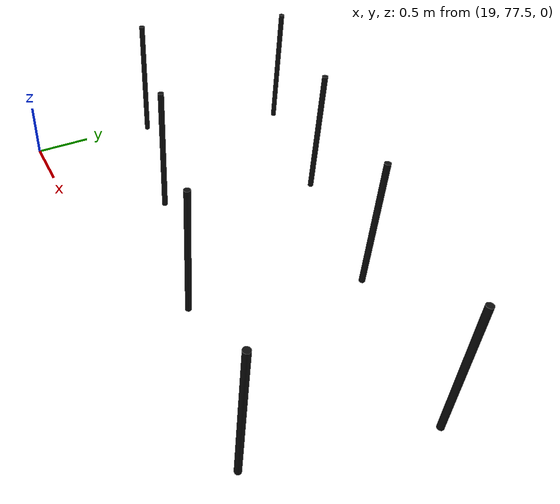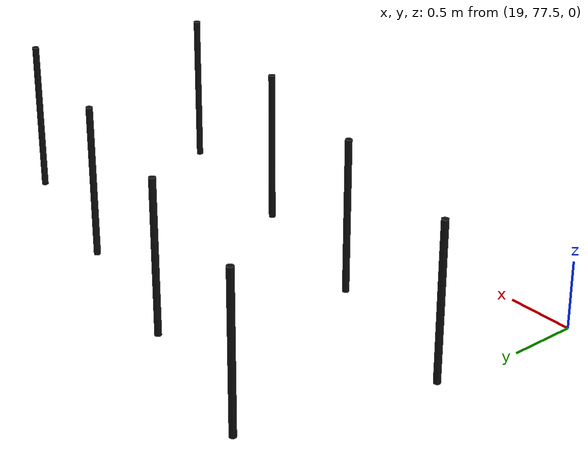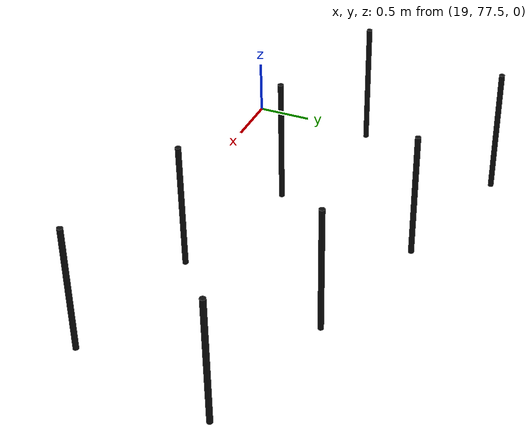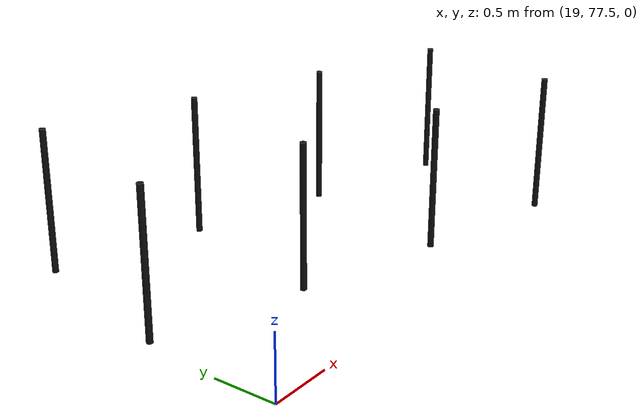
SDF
<sdf version="1.4">
 <world name="default">
  <include><uri>model://sun</uri></include>
  <model name="pole_1789">
   <static>1</static>
   <pose>19.078 78.646 0.575 0.0 0.0 0.0</pose>
   <link name="link">
    <collision name="collision">
     <geometry><cylinder><length>1.15</length><radius>0.025</radius></cylinder></geometry>
    </collision>
    <visual name="visual">
     <geometry><cylinder><length>1.15</length><radius>0.025</radius></cylinder></geometry>
     <material>
      <script><uri>file://media/materials/scripts/gazebo.material</uri><name>Gazebo/Chrome</name></script>
      <shader type="vertex"><normal_map>__default__</normal_map></shader>
      <emissive>0.1 0.1 0.1 1</emissive>
      <specular>0.01 0.01 0.01 1</specular>
      <ambient>0.5 0.5 0.5 1</ambient>
      <diffuse>0.05 0.05 0.05 1</diffuse>
     </material>
    </visual>
   </link>
  </model>
  <model name="pole_1790">
   <static>1</static>
   <pose>19.428 79.996 0.575 0.0 0.0 0.0</pose>
   <link name="link">
    <collision name="collision">
     <geometry><cylinder><length>1.15</length><radius>0.025</radius></cylinder></geometry>
    </collision>
    <visual name="visual">
     <geometry><cylinder><length>1.15</length><radius>0.025</radius></cylinder></geometry>
     <material>
      <script><uri>file://media/materials/scripts/gazebo.material</uri><name>Gazebo/Chrome</name></script>
      <shader type="vertex"><normal_map>__default__</normal_map></shader>
      <emissive>0.1 0.1 0.1 1</emissive>
      <specular>0.01 0.01 0.01 1</specular>
      <ambient>0.5 0.5 0.5 1</ambient>
      <diffuse>0.05 0.05 0.05 1</diffuse>
     </material>
    </visual>
   </link>
  </model>
  <model name="pole_1862">
   <static>1</static>
   <pose>20.325 78.300 0.575 0.0 0.0 0.0</pose>
   <link name="link">
    <collision name="collision">
     <geometry><cylinder><length>1.15</length><radius>0.025</radius></cylinder></geometry>
    </collision>
    <visual name="visual">
     <geometry><cylinder><length>1.15</length><radius>0.025</radius></cylinder></geometry>
     <material>
      <script><uri>file://media/materials/scripts/gazebo.material</uri><name>Gazebo/Chrome</name></script>
      <shader type="vertex"><normal_map>__default__</normal_map></shader>
      <emissive>0.1 0.1 0.1 1</emissive>
      <specular>0.01 0.01 0.01 1</specular>
      <ambient>0.5 0.5 0.5 1</ambient>
      <diffuse>0.05 0.05 0.05 1</diffuse>
     </material>
    </visual>
   </link>
  </model>
  <model name="pole_1863">
   <static>1</static>
   <pose>20.670 79.650 0.575 0.0 0.0 0.0</pose>
   <link name="link">
    <collision name="collision">
     <geometry><cylinder><length>1.15</length><radius>0.025</radius></cylinder></geometry>
    </collision>
    <visual name="visual">
     <geometry><cylinder><length>1.15</length><radius>0.025</radius></cylinder></geometry>
     <material>
      <script><uri>file://media/materials/scripts/gazebo.material</uri><name>Gazebo/Chrome</name></script>
      <shader type="vertex"><normal_map>__default__</normal_map></shader>
      <emissive>0.1 0.1 0.1 1</emissive>
      <specular>0.01 0.01 0.01 1</specular>
      <ambient>0.5 0.5 0.5 1</ambient>
      <diffuse>0.05 0.05 0.05 1</diffuse>
     </material>
    </visual>
   </link>
  </model>
  <model name="pole_1935">
   <static>1</static>
   <pose>21.553 77.953 0.575 0.0 0.0 0.0</pose>
   <link name="link">
    <collision name="collision">
     <geometry><cylinder><length>1.15</length><radius>0.025</radius></cylinder></geometry>
    </collision>
    <visual name="visual">
     <geometry><cylinder><length>1.15</length><radius>0.025</radius></cylinder></geometry>
     <material>
      <script><uri>file://media/materials/scripts/gazebo.material</uri><name>Gazebo/Chrome</name></script>
      <shader type="vertex"><normal_map>__default__</normal_map></shader>
      <emissive>0.1 0.1 0.1 1</emissive>
      <specular>0.01 0.01 0.01 1</specular>
      <ambient>0.5 0.5 0.5 1</ambient>
      <diffuse>0.05 0.05 0.05 1</diffuse>
     </material>
    </visual>
   </link>
  </model>
  <model name="pole_1936">
   <static>1</static>
   <pose>21.890 79.318 0.575 0.0 0.0 0.0</pose>
   <link name="link">
    <collision name="collision">
     <geometry><cylinder><length>1.15</length><radius>0.025</radius></cylinder></geometry>
    </collision>
    <visual name="visual">
     <geometry><cylinder><length>1.15</length><radius>0.025</radius></cylinder></geometry>
     <material>
      <script><uri>file://media/materials/scripts/gazebo.material</uri><name>Gazebo/Chrome</name></script>
      <shader type="vertex"><normal_map>__default__</normal_map></shader>
      <emissive>0.1 0.1 0.1 1</emissive>
      <specular>0.01 0.01 0.01 1</specular>
      <ambient>0.5 0.5 0.5 1</ambient>
      <diffuse>0.05 0.05 0.05 1</diffuse>
     </material>
    </visual>
   </link>
  </model>
  <model name="pole_2008">
   <static>1</static>
   <pose>22.843 77.669 0.575 0.0 0.0 0.0</pose>
   <link name="link">
    <collision name="collision">
     <geometry><cylinder><length>1.15</length><radius>0.025</radius></cylinder></geometry>
    </collision>
    <visual name="visual">
     <geometry><cylinder><length>1.15</length><radius>0.025</radius></cylinder></geometry>
     <material>
      <script><uri>file://media/materials/scripts/gazebo.material</uri><name>Gazebo/Chrome</name></script>
      <shader type="vertex"><normal_map>__default__</normal_map></shader>
      <emissive>0.1 0.1 0.1 1</emissive>
      <specular>0.01 0.01 0.01 1</specular>
      <ambient>0.5 0.5 0.5 1</ambient>
      <diffuse>0.05 0.05 0.05 1</diffuse>
     </material>
    </visual>
   </link>
  </model>
  <model name="pole_2009">
   <static>1</static>
   <pose>23.154 78.972 0.575 0.0 0.0 0.0</pose>
   <link name="link">
    <collision name="collision">
     <geometry><cylinder><length>1.15</length><radius>0.025</radius></cylinder></geometry>
    </collision>
    <visual name="visual">
     <geometry><cylinder><length>1.15</length><radius>0.025</radius></cylinder></geometry>
     <material>
      <script><uri>file://media/materials/scripts/gazebo.material</uri><name>Gazebo/Chrome</name></script>
      <shader type="vertex"><normal_map>__default__</normal_map></shader>
      <emissive>0.1 0.1 0.1 1</emissive>
      <specular>0.01 0.01 0.01 1</specular>
      <ambient>0.5 0.5 0.5 1</ambient>
      <diffuse>0.05 0.05 0.05 1</diffuse>
     </material>
    </visual>
   </link>
  </model>
 </world>
</sdf>
